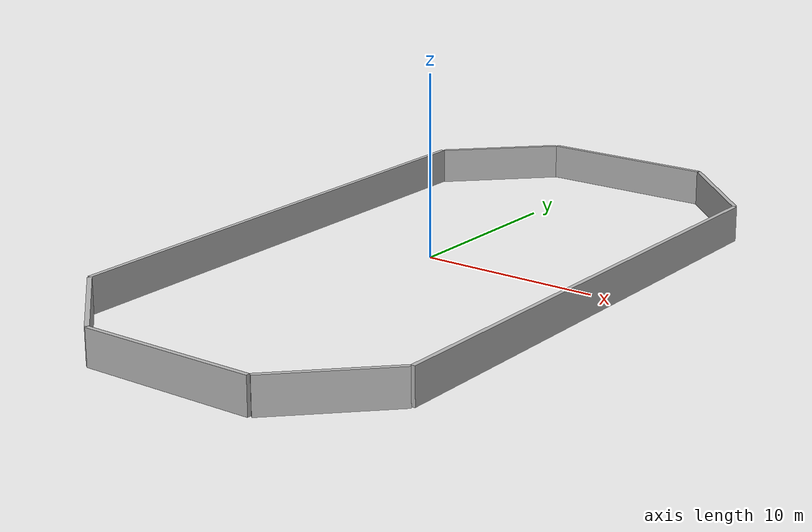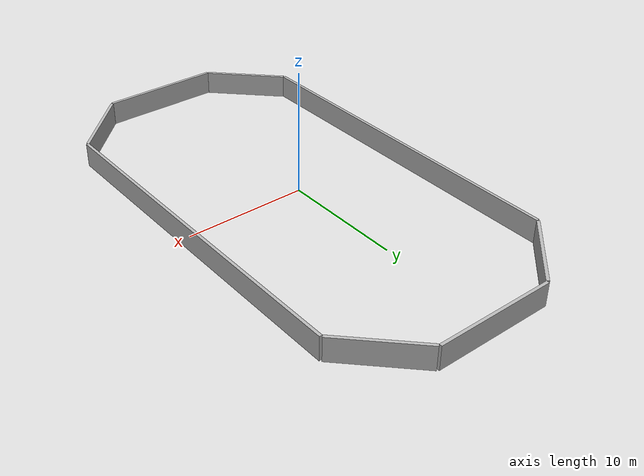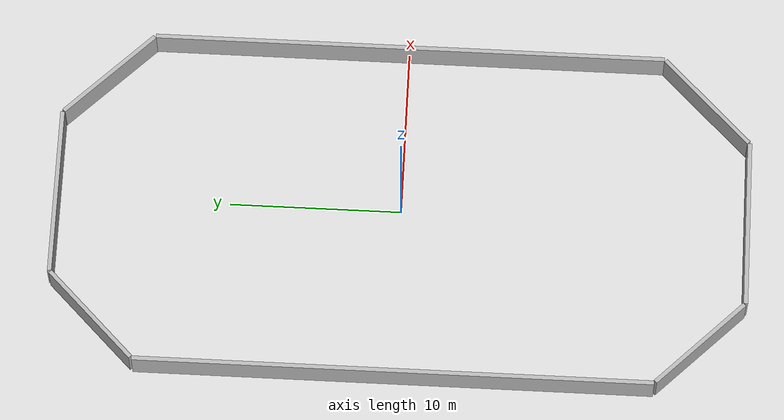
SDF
<sdf version="1.6">
    <world name="arena">
        <include>
        <uri>model://sun</uri>
        </include>

        <model name="arena">
            <pose>0 0 0 0 0 0</pose>
            <static>true</static>
            <link name="north-wall">
                <pose>10.125 0 0 0 0 0</pose>
                <collision name="collision">
                    <geometry><box><size>0.25 30 2</size></box></geometry>
                </collision>
                <visual name="visual">
                    <geometry><box><size>0.25 30 2</size></box></geometry>
                </visual>
            </link>
            <link name="south-wall">
                <pose>-10.125 0 0 0 0 0</pose>
                <collision name="collision">
                    <geometry><box><size>0.25 30 2</size></box></geometry>
                </collision>
                <visual name="visual">
                    <geometry><box><size>0.25 30 2</size></box></geometry>
                </visual>
            </link>
            <link name="east-wall">
                <pose>0 -20.125 0 0 0 0</pose>
                <collision name="collision">
                    <geometry><box><size>10 0.25 2</size></box></geometry>
                </collision>
                <visual name="visual">
                    <geometry><box><size>10 0.25 2</size></box></geometry>
                </visual>
            </link>
            <link name="west-wall">
                <pose>0 20.125 0 0 0 0</pose>
                <collision name="collision">
                    <geometry><box><size>10 0.25 2</size></box></geometry>
                </collision>
                <visual name="visual">
                    <geometry><box><size>10 0.25 2</size></box></geometry>
                </visual>
            </link>
            <link name="northwest-corner-wall">
                <pose>7.5625 17.5625 0 0 0 0.785375</pose>
                <collision name="collision">
                    <geometry><box><size>0.25 7.07 2</size></box></geometry>
                </collision>
                <visual name="visual">
                    <geometry><box><size>0.25 7.07 2</size></box></geometry>
                </visual>
            </link>
            <link name="northeast-corner-wall">
                <pose>7.5625 -17.5625 0 0 0 5.497625</pose>
                <collision name="collision">
                    <geometry><box><size>0.25 7.07 2</size></box></geometry>
                </collision>
                <visual name="visual">
                    <geometry><box><size>0.25 7.07 2</size></box></geometry>
                </visual>
            </link>
            <link name="southwest-corner-wall">
                <pose>-7.5625 17.5625 0 0 0 2.356125</pose>
                <collision name="collision">
                    <geometry><box><size>0.25 7.07 2</size></box></geometry>
                </collision>
                <visual name="visual">
                    <geometry><box><size>0.25 7.07 2</size></box></geometry>
                </visual>
            </link>
            <link name="southeast-corner-wall">
                <pose>-7.5625 -17.5625 0 0 0 3.926875</pose>
                <collision name="collision">
                    <geometry><box><size>0.25 7.07 2</size></box></geometry>
                </collision>
                <visual name="visual">
                    <geometry><box><size>0.25 7.07 2</size></box></geometry>
                </visual>
            </link>
        </model>
    </world>
    <plugin name="factory" filename="libgazebo_ros_factory.so">
        <ros>
            <namespace>/</namespace>
        </ros>
    </plugin>
</sdf>
